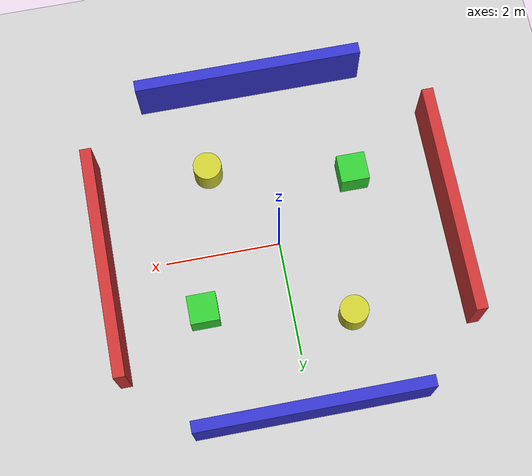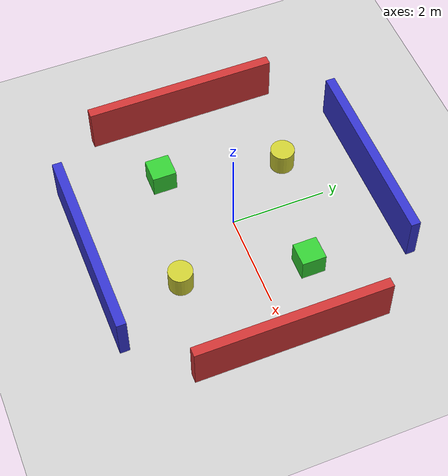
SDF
<?xml version="1.0"?>
<sdf version="1.6">
  <world name="default">

    <physics type="ode">
      <max_step_size>0.01</max_step_size>
      <real_time_factor>1.0</real_time_factor>
      <real_time_update_rate>100</real_time_update_rate>
      <ode>
        <solver>
          <type>quick</type>
          <iters>200</iters>
          <sor>1.0</sor>
        </solver>
        <constraints>
          <cfm>0.0001</cfm>
          <erp>0.2</erp>
          <contact_max_correcting_vel>100</contact_max_correcting_vel>
          <contact_surface_layer>0.001</contact_surface_layer>
        </constraints>
      </ode>
    </physics>

    <!-- Plugins padrão do Gazebo Classic (geralmente já vêm no empty_world) -->
    <plugin name="gazebo_ros_state" filename="libgazebo_ros_state.so"/>

    <!-- Ambient light so the scene is visible -->
    <scene>
      <ambient>0.4 0.4 0.4 1</ambient>
      <background>0.7 0.7 0.7 1</background>
      <shadows>false</shadows>
    </scene>

    <light name="sun" type="directional">
      <cast_shadows>true</cast_shadows>
      <pose>0 0 10 0 0 0</pose>
      <diffuse>0.8 0.8 0.8 1</diffuse>
      <specular>0.2 0.2 0.2 1</specular>
      <direction>-0.5 0.1 -0.9</direction>
    </light>

    <!-- Ground plane -->
    <model name="ground_plane">
      <static>true</static>
      <link name="link">
        <collision name="collision">
          <geometry>
            <plane>
              <normal>0 0 1</normal>
              <size>100 100</size>
            </plane>
          </geometry>
        </collision>
        <visual name="visual">
          <geometry>
            <plane>
              <normal>0 0 1</normal>
              <size>100 100</size>
            </plane>
          </geometry>
          <material>
            <ambient>0.8 0.8 0.8 1</ambient>
            <diffuse>0.8 0.8 0.8 1</diffuse>
          </material>
        </visual>
      </link>
    </model>

    <!-- Wall North -->
    <model name="wall_north">
      <static>true</static>
      <pose>3 0 0.5 0 0 0</pose>
      <link name="link">
        <collision name="collision">
          <geometry><box><size>0.2 4 1</size></box></geometry>
        </collision>
        <visual name="visual">
          <geometry><box><size>0.2 4 1</size></box></geometry>
          <material><ambient>0.8 0.2 0.2 1</ambient><diffuse>0.8 0.2 0.2 1</diffuse></material>
        </visual>
      </link>
    </model>

    <!-- Wall South -->
    <model name="wall_south">
      <static>true</static>
      <pose>-3 0 0.5 0 0 0</pose>
      <link name="link">
        <collision name="collision">
          <geometry><box><size>0.2 4 1</size></box></geometry>
        </collision>
        <visual name="visual">
          <geometry><box><size>0.2 4 1</size></box></geometry>
          <material><ambient>0.8 0.2 0.2 1</ambient><diffuse>0.8 0.2 0.2 1</diffuse></material>
        </visual>
      </link>
    </model>

    <!-- Wall East -->
    <model name="wall_east">
      <static>true</static>
      <pose>0 3 0.5 0 0 0</pose>
      <link name="link">
        <collision name="collision">
          <geometry><box><size>4 0.2 1</size></box></geometry>
        </collision>
        <visual name="visual">
          <geometry><box><size>4 0.2 1</size></box></geometry>
          <material><ambient>0.2 0.2 0.8 1</ambient><diffuse>0.2 0.2 0.8 1</diffuse></material>
        </visual>
      </link>
    </model>

    <!-- Wall West -->
    <model name="wall_west">
      <static>true</static>
      <pose>0 -3 0.5 0 0 0</pose>
      <link name="link">
        <collision name="collision">
          <geometry><box><size>4 0.2 1</size></box></geometry>
        </collision>
        <visual name="visual">
          <geometry><box><size>4 0.2 1</size></box></geometry>
          <material><ambient>0.2 0.2 0.8 1</ambient><diffuse>0.2 0.2 0.8 1</diffuse></material>
        </visual>
      </link>
    </model>

    <!-- Box obstacle 1 -->
    <model name="box_1">
      <static>true</static>
      <pose>1.5 1 0.25 0 0 0</pose>
      <link name="link">
        <collision name="collision">
          <geometry><box><size>0.5 0.5 0.5</size></box></geometry>
        </collision>
        <visual name="visual">
          <geometry><box><size>0.5 0.5 0.5</size></box></geometry>
          <material><ambient>0.2 0.8 0.2 1</ambient><diffuse>0.2 0.8 0.2 1</diffuse></material>
        </visual>
      </link>
    </model>

    <!-- Box obstacle 2 -->
    <model name="box_2">
      <static>true</static>
      <pose>-1.5 -1 0.25 0 0 0</pose>
      <link name="link">
        <collision name="collision">
          <geometry><box><size>0.5 0.5 0.5</size></box></geometry>
        </collision>
        <visual name="visual">
          <geometry><box><size>0.5 0.5 0.5</size></box></geometry>
          <material><ambient>0.2 0.8 0.2 1</ambient><diffuse>0.2 0.8 0.2 1</diffuse></material>
        </visual>
      </link>
    </model>

    <!-- Cylinder obstacle 1 -->
    <model name="cylinder_1">
      <static>true</static>
      <pose>1 -1.5 0.25 0 0 0</pose>
      <link name="link">
        <collision name="collision">
          <geometry><cylinder><radius>0.25</radius><length>0.5</length></cylinder></geometry>
        </collision>
        <visual name="visual">
          <geometry><cylinder><radius>0.25</radius><length>0.5</length></cylinder></geometry>
          <material><ambient>0.8 0.8 0.2 1</ambient><diffuse>0.8 0.8 0.2 1</diffuse></material>
        </visual>
      </link>
    </model>

    <!-- Cylinder obstacle 2 -->
    <model name="cylinder_2">
      <static>true</static>
      <pose>-1 1.5 0.25 0 0 0</pose>
      <link name="link">
        <collision name="collision">
          <geometry><cylinder><radius>0.25</radius><length>0.5</length></cylinder></geometry>
        </collision>
        <visual name="visual">
          <geometry><cylinder><radius>0.25</radius><length>0.5</length></cylinder></geometry>
          <material><ambient>0.8 0.8 0.2 1</ambient><diffuse>0.8 0.8 0.2 1</diffuse></material>
        </visual>
      </link>
    </model>

  </world>
</sdf>
